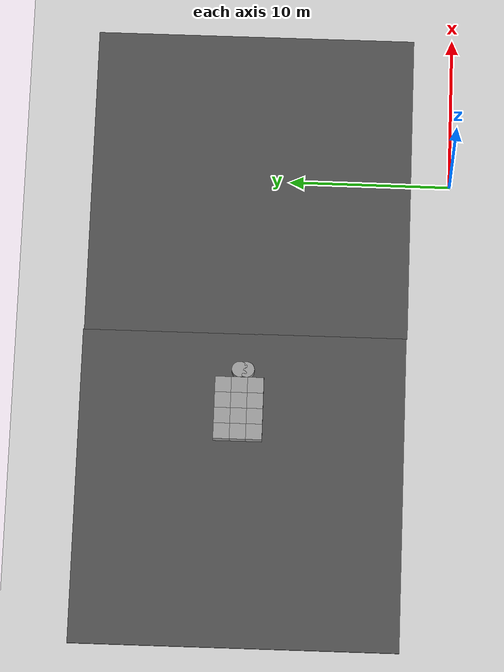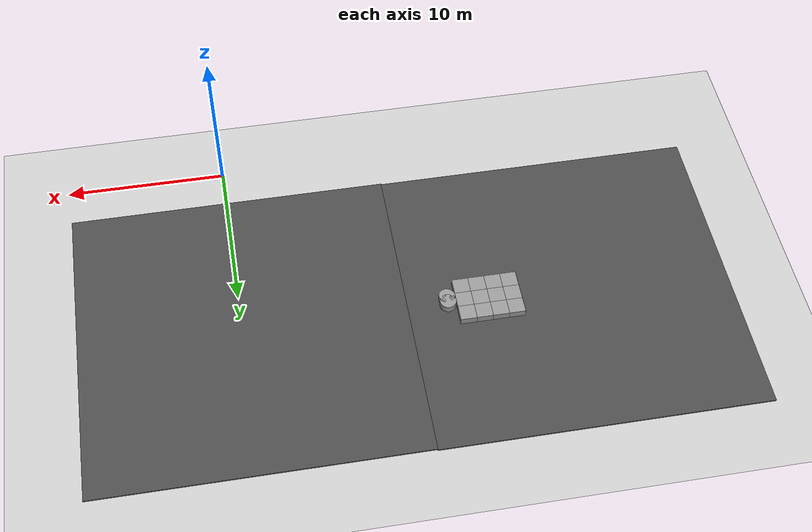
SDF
<sdf version="1.6">
 <world name="default">
  <model name="ground_plane">
   <static>1</static>
   <link name="link">
    <collision name="collision">
     <geometry><plane><normal>0 0 1</normal><size>100 100</size></plane></geometry>
     <surface><friction><ode><mu>100</mu><mu2>50</mu2></ode></friction></surface>
    </collision>
    <visual name="visual">
     <cast_shadows>0</cast_shadows>
     <geometry><plane><normal>0 0 1</normal><size>100 100</size></plane></geometry>
     <material>
      <script><uri>file://media/materials/scripts/gazebo.material</uri><name>Gazebo/Grey</name></script>
     </material>
    </visual>
   </link>
  </model>
  <model name="asphalt_plane">
   <static>1</static>
   <link name="link">
    <collision name="collision"><geometry><box><size>20 20 0.1</size></box></geometry></collision>
    <visual name="visual">
     <cast_shadows>0</cast_shadows>
     <geometry><box><size>20 20 0.1</size></box></geometry>
     <material>
      <script>
       <uri>model://asphalt_plane/materials/scripts</uri>
       <uri>model://asphalt_plane/materials/textures</uri>
       <name>vrc/asphalt</name>
      </script>
     </material>
    </visual>
   </link>
   <pose>-0.132526 12.4193 0 0 -0 0</pose>
  </model>
  <model name="asphalt_plane_0">
   <static>1</static>
   <link name="link">
    <collision name="collision"><geometry><box><size>20 20 0.1</size></box></geometry></collision>
    <visual name="visual">
     <cast_shadows>0</cast_shadows>
     <geometry><box><size>20 20 0.1</size></box></geometry>
     <material>
      <script>
       <uri>model://asphalt_plane/materials/scripts</uri>
       <uri>model://asphalt_plane/materials/textures</uri>
       <name>vrc/asphalt</name>
      </script>
     </material>
    </visual>
   </link>
   <pose>-20.1156 12.4778 0 0 -0 0</pose>
  </model>
  <model name="car_3">
   <link name="link_0">
    <pose>-0.5 -0.883748 0 0 -0 0</pose>
    <inertial>
     <mass>1</mass>
     <inertia>
      <ixx>0.166667</ixx>
      <ixy>0</ixy>
      <ixz>0</ixz>
      <iyy>0.166667</iyy>
      <iyz>0</iyz>
      <izz>0.166667</izz>
     </inertia>
    </inertial>
    <visual name="visual">
     <geometry><box><size>1 1 1</size></box></geometry>
     <material>
      <lighting>1</lighting>
      <script><uri>file://media/materials/scripts/gazebo.material</uri><name>Gazebo/Grey</name></script>
      <ambient>0.3 0.3 0.3 1</ambient>
      <diffuse>0.7 0.7 0.7 1</diffuse>
      <specular>0.01 0.01 0.01 1</specular>
      <emissive>0 0 0 1</emissive>
     </material>
    </visual>
    <collision name="collision">
     <geometry><box><size>1 1 1</size></box></geometry>
     <surface>
      <friction>
       <ode><mu>1</mu><mu2>1</mu2><fdir1>0 0 0</fdir1><slip1>0</slip1><slip2>0</slip2></ode>
       <torsional>
        <coefficient>1</coefficient>
        <patch_radius>0</patch_radius>
        <surface_radius>0</surface_radius>
        <use_patch_radius>1</use_patch_radius>
        <ode><slip>0</slip></ode>
       </torsional>
      </friction>
      <bounce><restitution_coefficient>0</restitution_coefficient><threshold>1e+06</threshold></bounce>
      <contact>
       <collide_without_contact>0</collide_without_contact>
       <collide_without_contact_bitmask>1</collide_without_contact_bitmask>
       <collide_bitmask>1</collide_bitmask>
       <ode>
        <soft_cfm>0</soft_cfm>
        <soft_erp>0.2</soft_erp>
        <kp>1e+13</kp>
        <kd>1</kd>
        <max_vel>0.01</max_vel>
        <min_depth>0</min_depth>
       </ode>
       <bullet>
        <split_impulse>1</split_impulse>
        <split_impulse_penetration_threshold>-0.01</split_impulse_penetration_threshold>
        <soft_cfm>0</soft_cfm>
        <soft_erp>0.2</soft_erp>
        <kp>1e+13</kp>
        <kd>1</kd>
       </bullet>
      </contact>
     </surface>
    </collision>
   </link>
   <link name="link_1">
    <pose>0.5 -0.883748 0 0 -0 0</pose>
    <inertial>
     <mass>1</mass>
     <inertia>
      <ixx>0.166667</ixx>
      <ixy>0</ixy>
      <ixz>0</ixz>
      <iyy>0.166667</iyy>
      <iyz>0</iyz>
      <izz>0.166667</izz>
     </inertia>
    </inertial>
    <visual name="visual">
     <geometry><box><size>1 1 1</size></box></geometry>
     <material>
      <lighting>1</lighting>
      <script><uri>file://media/materials/scripts/gazebo.material</uri><name>Gazebo/Grey</name></script>
      <ambient>0.3 0.3 0.3 1</ambient>
      <diffuse>0.7 0.7 0.7 1</diffuse>
      <specular>0.01 0.01 0.01 1</specular>
      <emissive>0 0 0 1</emissive>
     </material>
    </visual>
    <collision name="collision">
     <geometry><box><size>1 1 1</size></box></geometry>
     <surface>
      <friction>
       <ode><mu>1</mu><mu2>1</mu2><fdir1>0 0 0</fdir1><slip1>0</slip1><slip2>0</slip2></ode>
       <torsional>
        <coefficient>1</coefficient>
        <patch_radius>0</patch_radius>
        <surface_radius>0</surface_radius>
        <use_patch_radius>1</use_patch_radius>
        <ode><slip>0</slip></ode>
       </torsional>
      </friction>
      <bounce><restitution_coefficient>0</restitution_coefficient><threshold>1e+06</threshold></bounce>
      <contact>
       <collide_without_contact>0</collide_without_contact>
       <collide_without_contact_bitmask>1</collide_without_contact_bitmask>
       <collide_bitmask>1</collide_bitmask>
       <ode>
        <soft_cfm>0</soft_cfm>
        <soft_erp>0.2</soft_erp>
        <kp>1e+13</kp>
        <kd>1</kd>
        <max_vel>0.01</max_vel>
        <min_depth>0</min_depth>
       </ode>
       <bullet>
        <split_impulse>1</split_impulse>
        <split_impulse_penetration_threshold>-0.01</split_impulse_penetration_threshold>
        <soft_cfm>0</soft_cfm>
        <soft_erp>0.2</soft_erp>
        <kp>1e+13</kp>
        <kd>1</kd>
       </bullet>
      </contact>
     </surface>
    </collision>
   </link>
   <link name="link_12">
    <pose>-1.5 0.11625 0 0 -0 0</pose>
    <inertial>
     <mass>1</mass>
     <inertia>
      <ixx>0.166667</ixx>
      <ixy>0</ixy>
      <ixz>0</ixz>
      <iyy>0.166667</iyy>
      <iyz>0</iyz>
      <izz>0.166667</izz>
     </inertia>
    </inertial>
    <visual name="visual">
     <geometry><box><size>1 1 1</size></box></geometry>
     <material>
      <lighting>1</lighting>
      <script><uri>file://media/materials/scripts/gazebo.material</uri><name>Gazebo/Grey</name></script>
      <ambient>0.3 0.3 0.3 1</ambient>
      <diffuse>0.7 0.7 0.7 1</diffuse>
      <specular>0.01 0.01 0.01 1</specular>
      <emissive>0 0 0 1</emissive>
     </material>
    </visual>
    <collision name="collision">
     <geometry><box><size>1 1 1</size></box></geometry>
     <surface>
      <friction>
       <ode><mu>1</mu><mu2>1</mu2><fdir1>0 0 0</fdir1><slip1>0</slip1><slip2>0</slip2></ode>
       <torsional>
        <coefficient>1</coefficient>
        <patch_radius>0</patch_radius>
        <surface_radius>0</surface_radius>
        <use_patch_radius>1</use_patch_radius>
        <ode><slip>0</slip></ode>
       </torsional>
      </friction>
      <bounce><restitution_coefficient>0</restitution_coefficient><threshold>1e+06</threshold></bounce>
      <contact>
       <collide_without_contact>0</collide_without_contact>
       <collide_without_contact_bitmask>1</collide_without_contact_bitmask>
       <collide_bitmask>1</collide_bitmask>
       <ode>
        <soft_cfm>0</soft_cfm>
        <soft_erp>0.2</soft_erp>
        <kp>1e+13</kp>
        <kd>1</kd>
        <max_vel>0.01</max_vel>
        <min_depth>0</min_depth>
       </ode>
       <bullet>
        <split_impulse>1</split_impulse>
        <split_impulse_penetration_threshold>-0.01</split_impulse_penetration_threshold>
        <soft_cfm>0</soft_cfm>
        <soft_erp>0.2</soft_erp>
        <kp>1e+13</kp>
        <kd>1</kd>
       </bullet>
      </contact>
     </surface>
    </collision>
   </link>
   <link name="link_13">
    <pose>1.5 1.11625 0 0 -0 0</pose>
    <inertial>
     <mass>1</mass>
     <inertia>
      <ixx>0.166667</ixx>
      <ixy>0</ixy>
      <ixz>0</ixz>
      <iyy>0.166667</iyy>
      <iyz>0</iyz>
      <izz>0.166667</izz>
     </inertia>
    </inertial>
    <visual name="visual">
     <geometry><box><size>1 1 1</size></box></geometry>
     <material>
      <lighting>1</lighting>
      <script><uri>file://media/materials/scripts/gazebo.material</uri><name>Gazebo/Grey</name></script>
      <ambient>0.3 0.3 0.3 1</ambient>
      <diffuse>0.7 0.7 0.7 1</diffuse>
      <specular>0.01 0.01 0.01 1</specular>
      <emissive>0 0 0 1</emissive>
     </material>
    </visual>
    <collision name="collision">
     <geometry><box><size>1 1 1</size></box></geometry>
     <surface>
      <friction>
       <ode><mu>1</mu><mu2>1</mu2><fdir1>0 0 0</fdir1><slip1>0</slip1><slip2>0</slip2></ode>
       <torsional>
        <coefficient>1</coefficient>
        <patch_radius>0</patch_radius>
        <surface_radius>0</surface_radius>
        <use_patch_radius>1</use_patch_radius>
        <ode><slip>0</slip></ode>
       </torsional>
      </friction>
      <bounce><restitution_coefficient>0</restitution_coefficient><threshold>1e+06</threshold></bounce>
      <contact>
       <collide_without_contact>0</collide_without_contact>
       <collide_without_contact_bitmask>1</collide_without_contact_bitmask>
       <collide_bitmask>1</collide_bitmask>
       <ode>
        <soft_cfm>0</soft_cfm>
        <soft_erp>0.2</soft_erp>
        <kp>1e+13</kp>
        <kd>1</kd>
        <max_vel>0.01</max_vel>
        <min_depth>0</min_depth>
       </ode>
       <bullet>
        <split_impulse>1</split_impulse>
        <split_impulse_penetration_threshold>-0.01</split_impulse_penetration_threshold>
        <soft_cfm>0</soft_cfm>
        <soft_erp>0.2</soft_erp>
        <kp>1e+13</kp>
        <kd>1</kd>
       </bullet>
      </contact>
     </surface>
    </collision>
   </link>
   <link name="link_14">
    <pose>0.5 1.11625 0 0 -0 0</pose>
    <inertial>
     <mass>1</mass>
     <inertia>
      <ixx>0.166667</ixx>
      <ixy>0</ixy>
      <ixz>0</ixz>
      <iyy>0.166667</iyy>
      <iyz>0</iyz>
      <izz>0.166667</izz>
     </inertia>
    </inertial>
    <visual name="visual">
     <geometry><box><size>1 1 1</size></box></geometry>
     <material>
      <lighting>1</lighting>
      <script><uri>file://media/materials/scripts/gazebo.material</uri><name>Gazebo/Grey</name></script>
      <ambient>0.3 0.3 0.3 1</ambient>
      <diffuse>0.7 0.7 0.7 1</diffuse>
      <specular>0.01 0.01 0.01 1</specular>
      <emissive>0 0 0 1</emissive>
     </material>
    </visual>
    <collision name="collision">
     <geometry><box><size>1 1 1</size></box></geometry>
     <surface>
      <friction>
       <ode><mu>1</mu><mu2>1</mu2><fdir1>0 0 0</fdir1><slip1>0</slip1><slip2>0</slip2></ode>
       <torsional>
        <coefficient>1</coefficient>
        <patch_radius>0</patch_radius>
        <surface_radius>0</surface_radius>
        <use_patch_radius>1</use_patch_radius>
        <ode><slip>0</slip></ode>
       </torsional>
      </friction>
      <bounce><restitution_coefficient>0</restitution_coefficient><threshold>1e+06</threshold></bounce>
      <contact>
       <collide_without_contact>0</collide_without_contact>
       <collide_without_contact_bitmask>1</collide_without_contact_bitmask>
       <collide_bitmask>1</collide_bitmask>
       <ode>
        <soft_cfm>0</soft_cfm>
        <soft_erp>0.2</soft_erp>
        <kp>1e+13</kp>
        <kd>1</kd>
        <max_vel>0.01</max_vel>
        <min_depth>0</min_depth>
       </ode>
       <bullet>
        <split_impulse>1</split_impulse>
        <split_impulse_penetration_threshold>-0.01</split_impulse_penetration_threshold>
        <soft_cfm>0</soft_cfm>
        <soft_erp>0.2</soft_erp>
        <kp>1e+13</kp>
        <kd>1</kd>
       </bullet>
      </contact>
     </surface>
    </collision>
   </link>
   <link name="link_15">
    <pose>-0.5 1.11625 0 0 -0 0</pose>
    <inertial>
     <mass>1</mass>
     <inertia>
      <ixx>0.166667</ixx>
      <ixy>0</ixy>
      <ixz>0</ixz>
      <iyy>0.166667</iyy>
      <iyz>0</iyz>
      <izz>0.166667</izz>
     </inertia>
    </inertial>
    <visual name="visual">
     <geometry><box><size>1 1 1</size></box></geometry>
     <material>
      <lighting>1</lighting>
      <script><uri>file://media/materials/scripts/gazebo.material</uri><name>Gazebo/Grey</name></script>
      <ambient>0.3 0.3 0.3 1</ambient>
      <diffuse>0.7 0.7 0.7 1</diffuse>
      <specular>0.01 0.01 0.01 1</specular>
      <emissive>0 0 0 1</emissive>
     </material>
    </visual>
    <collision name="collision">
     <geometry><box><size>1 1 1</size></box></geometry>
     <surface>
      <friction>
       <ode><mu>1</mu><mu2>1</mu2><fdir1>0 0 0</fdir1><slip1>0</slip1><slip2>0</slip2></ode>
       <torsional>
        <coefficient>1</coefficient>
        <patch_radius>0</patch_radius>
        <surface_radius>0</surface_radius>
        <use_patch_radius>1</use_patch_radius>
        <ode><slip>0</slip></ode>
       </torsional>
      </friction>
      <bounce><restitution_coefficient>0</restitution_coefficient><threshold>1e+06</threshold></bounce>
      <contact>
       <collide_without_contact>0</collide_without_contact>
       <collide_without_contact_bitmask>1</collide_without_contact_bitmask>
       <collide_bitmask>1</collide_bitmask>
       <ode>
        <soft_cfm>0</soft_cfm>
        <soft_erp>0.2</soft_erp>
        <kp>1e+13</kp>
        <kd>1</kd>
        <max_vel>0.01</max_vel>
        <min_depth>0</min_depth>
       </ode>
       <bullet>
        <split_impulse>1</split_impulse>
        <split_impulse_penetration_threshold>-0.01</split_impulse_penetration_threshold>
        <soft_cfm>0</soft_cfm>
        <soft_erp>0.2</soft_erp>
        <kp>1e+13</kp>
        <kd>1</kd>
       </bullet>
      </contact>
     </surface>
    </collision>
   </link>
   <link name="link_16">
    <pose>-1.5 1.11625 0 0 -0 0</pose>
    <inertial>
     <mass>1</mass>
     <inertia>
      <ixx>0.166667</ixx>
      <ixy>0</ixy>
      <ixz>0</ixz>
      <iyy>0.166667</iyy>
      <iyz>0</iyz>
      <izz>0.166667</izz>
     </inertia>
    </inertial>
    <visual name="visual">
     <geometry><box><size>1 1 1</size></box></geometry>
     <material>
      <lighting>1</lighting>
      <script><uri>file://media/materials/scripts/gazebo.material</uri><name>Gazebo/Grey</name></script>
      <ambient>0.3 0.3 0.3 1</ambient>
      <diffuse>0.7 0.7 0.7 1</diffuse>
      <specular>0.01 0.01 0.01 1</specular>
      <emissive>0 0 0 1</emissive>
     </material>
    </visual>
    <collision name="collision">
     <geometry><box><size>1 1 1</size></box></geometry>
     <surface>
      <friction>
       <ode><mu>1</mu><mu2>1</mu2><fdir1>0 0 0</fdir1><slip1>0</slip1><slip2>0</slip2></ode>
       <torsional>
        <coefficient>1</coefficient>
        <patch_radius>0</patch_radius>
        <surface_radius>0</surface_radius>
        <use_patch_radius>1</use_patch_radius>
        <ode><slip>0</slip></ode>
       </torsional>
      </friction>
      <bounce><restitution_coefficient>0</restitution_coefficient><threshold>1e+06</threshold></bounce>
      <contact>
       <collide_without_contact>0</collide_without_contact>
       <collide_without_contact_bitmask>1</collide_without_contact_bitmask>
       <collide_bitmask>1</collide_bitmask>
       <ode>
        <soft_cfm>0</soft_cfm>
        <soft_erp>0.2</soft_erp>
        <kp>1e+13</kp>
        <kd>1</kd>
        <max_vel>0.01</max_vel>
        <min_depth>0</min_depth>
       </ode>
       <bullet>
        <split_impulse>1</split_impulse>
        <split_impulse_penetration_threshold>-0.01</split_impulse_penetration_threshold>
        <soft_cfm>0</soft_cfm>
        <soft_erp>0.2</soft_erp>
        <kp>1e+13</kp>
        <kd>1</kd>
       </bullet>
      </contact>
     </surface>
    </collision>
   </link>
   <link name="link_19">
    <pose>2.5 -0.287812 0 0 -0 0</pose>
    <inertial>
     <mass>1</mass>
     <inertia><ixx>0.145833</ixx><ixy>0</ixy><ixz>0</ixz><iyy>0.145833</iyy><iyz>0</iyz><izz>0.125</izz></inertia>
    </inertial>
    <visual name="visual">
     <geometry><cylinder><radius>0.5</radius><length>1</length></cylinder></geometry>
     <material>
      <lighting>1</lighting>
      <script><uri>file://media/materials/scripts/gazebo.material</uri><name>Gazebo/Grey</name></script>
      <ambient>0.3 0.3 0.3 1</ambient>
      <diffuse>0.7 0.7 0.7 1</diffuse>
      <specular>0.01 0.01 0.01 1</specular>
      <emissive>0 0 0 1</emissive>
     </material>
    </visual>
    <collision name="collision">
     <geometry><cylinder><radius>0.5</radius><length>1</length></cylinder></geometry>
     <surface>
      <friction>
       <ode><mu>1</mu><mu2>1</mu2><fdir1>0 0 0</fdir1><slip1>0</slip1><slip2>0</slip2></ode>
       <torsional>
        <coefficient>1</coefficient>
        <patch_radius>0</patch_radius>
        <surface_radius>0</surface_radius>
        <use_patch_radius>1</use_patch_radius>
        <ode><slip>0</slip></ode>
       </torsional>
      </friction>
      <bounce><restitution_coefficient>0</restitution_coefficient><threshold>1e+06</threshold></bounce>
      <contact>
       <collide_without_contact>0</collide_without_contact>
       <collide_without_contact_bitmask>1</collide_without_contact_bitmask>
       <collide_bitmask>1</collide_bitmask>
       <ode>
        <soft_cfm>0</soft_cfm>
        <soft_erp>0.2</soft_erp>
        <kp>1e+13</kp>
        <kd>1</kd>
        <max_vel>0.01</max_vel>
        <min_depth>0</min_depth>
       </ode>
       <bullet>
        <split_impulse>1</split_impulse>
        <split_impulse_penetration_threshold>-0.01</split_impulse_penetration_threshold>
        <soft_cfm>0</soft_cfm>
        <soft_erp>0.2</soft_erp>
        <kp>1e+13</kp>
        <kd>1</kd>
       </bullet>
      </contact>
     </surface>
    </collision>
   </link>
   <link name="link_2">
    <pose>1.5 -0.883748 0 0 -0 0</pose>
    <inertial>
     <mass>1</mass>
     <inertia>
      <ixx>0.166667</ixx>
      <ixy>0</ixy>
      <ixz>0</ixz>
      <iyy>0.166667</iyy>
      <iyz>0</iyz>
      <izz>0.166667</izz>
     </inertia>
    </inertial>
    <visual name="visual">
     <geometry><box><size>1 1 1</size></box></geometry>
     <material>
      <lighting>1</lighting>
      <script><uri>file://media/materials/scripts/gazebo.material</uri><name>Gazebo/Grey</name></script>
      <ambient>0.3 0.3 0.3 1</ambient>
      <diffuse>0.7 0.7 0.7 1</diffuse>
      <specular>0.01 0.01 0.01 1</specular>
      <emissive>0 0 0 1</emissive>
     </material>
    </visual>
    <collision name="collision">
     <geometry><box><size>1 1 1</size></box></geometry>
     <surface>
      <friction>
       <ode><mu>1</mu><mu2>1</mu2><fdir1>0 0 0</fdir1><slip1>0</slip1><slip2>0</slip2></ode>
       <torsional>
        <coefficient>1</coefficient>
        <patch_radius>0</patch_radius>
        <surface_radius>0</surface_radius>
        <use_patch_radius>1</use_patch_radius>
        <ode><slip>0</slip></ode>
       </torsional>
      </friction>
      <bounce><restitution_coefficient>0</restitution_coefficient><threshold>1e+06</threshold></bounce>
      <contact>
       <collide_without_contact>0</collide_without_contact>
       <collide_without_contact_bitmask>1</collide_without_contact_bitmask>
       <collide_bitmask>1</collide_bitmask>
       <ode>
        <soft_cfm>0</soft_cfm>
        <soft_erp>0.2</soft_erp>
        <kp>1e+13</kp>
        <kd>1</kd>
        <max_vel>0.01</max_vel>
        <min_depth>0</min_depth>
       </ode>
       <bullet>
        <split_impulse>1</split_impulse>
        <split_impulse_penetration_threshold>-0.01</split_impulse_penetration_threshold>
        <soft_cfm>0</soft_cfm>
        <soft_erp>0.2</soft_erp>
        <kp>1e+13</kp>
        <kd>1</kd>
       </bullet>
      </contact>
     </surface>
    </collision>
   </link>
   <link name="link_20">
    <pose>2.5 0.11625 0 0 -0 0</pose>
    <inertial>
     <mass>1</mass>
     <inertia><ixx>0.145833</ixx><ixy>0</ixy><ixz>0</ixz><iyy>0.145833</iyy><iyz>0</iyz><izz>0.125</izz></inertia>
    </inertial>
    <visual name="visual">
     <geometry><cylinder><radius>0.5</radius><length>1</length></cylinder></geometry>
     <material>
      <lighting>1</lighting>
      <script><uri>file://media/materials/scripts/gazebo.material</uri><name>Gazebo/Grey</name></script>
      <ambient>0.3 0.3 0.3 1</ambient>
      <diffuse>0.7 0.7 0.7 1</diffuse>
      <specular>0.01 0.01 0.01 1</specular>
      <emissive>0 0 0 1</emissive>
     </material>
    </visual>
    <collision name="collision">
     <geometry><cylinder><radius>0.5</radius><length>1</length></cylinder></geometry>
     <surface>
      <friction>
       <ode><mu>1</mu><mu2>1</mu2><fdir1>0 0 0</fdir1><slip1>0</slip1><slip2>0</slip2></ode>
       <torsional>
        <coefficient>1</coefficient>
        <patch_radius>0</patch_radius>
        <surface_radius>0</surface_radius>
        <use_patch_radius>1</use_patch_radius>
        <ode><slip>0</slip></ode>
       </torsional>
      </friction>
      <bounce><restitution_coefficient>0</restitution_coefficient><threshold>1e+06</threshold></bounce>
      <contact>
       <collide_without_contact>0</collide_without_contact>
       <collide_without_contact_bitmask>1</collide_without_contact_bitmask>
       <collide_bitmask>1</collide_bitmask>
       <ode>
        <soft_cfm>0</soft_cfm>
        <soft_erp>0.2</soft_erp>
        <kp>1e+13</kp>
        <kd>1</kd>
        <max_vel>0.01</max_vel>
        <min_depth>0</min_depth>
       </ode>
       <bullet>
        <split_impulse>1</split_impulse>
        <split_impulse_penetration_threshold>-0.01</split_impulse_penetration_threshold>
        <soft_cfm>0</soft_cfm>
        <soft_erp>0.2</soft_erp>
        <kp>1e+13</kp>
        <kd>1</kd>
       </bullet>
      </contact>
     </surface>
    </collision>
   </link>
   <link name="link_3">
    <pose>1.5 0.116252 0 0 -0 0</pose>
    <inertial>
     <mass>1</mass>
     <inertia>
      <ixx>0.166667</ixx>
      <ixy>0</ixy>
      <ixz>0</ixz>
      <iyy>0.166667</iyy>
      <iyz>0</iyz>
      <izz>0.166667</izz>
     </inertia>
    </inertial>
    <visual name="visual">
     <geometry><box><size>1 1 1</size></box></geometry>
     <material>
      <lighting>1</lighting>
      <script><uri>file://media/materials/scripts/gazebo.material</uri><name>Gazebo/Grey</name></script>
      <ambient>0.3 0.3 0.3 1</ambient>
      <diffuse>0.7 0.7 0.7 1</diffuse>
      <specular>0.01 0.01 0.01 1</specular>
      <emissive>0 0 0 1</emissive>
     </material>
    </visual>
    <collision name="collision">
     <geometry><box><size>1 1 1</size></box></geometry>
     <surface>
      <friction>
       <ode><mu>1</mu><mu2>1</mu2><fdir1>0 0 0</fdir1><slip1>0</slip1><slip2>0</slip2></ode>
       <torsional>
        <coefficient>1</coefficient>
        <patch_radius>0</patch_radius>
        <surface_radius>0</surface_radius>
        <use_patch_radius>1</use_patch_radius>
        <ode><slip>0</slip></ode>
       </torsional>
      </friction>
      <bounce><restitution_coefficient>0</restitution_coefficient><threshold>1e+06</threshold></bounce>
      <contact>
       <collide_without_contact>0</collide_without_contact>
       <collide_without_contact_bitmask>1</collide_without_contact_bitmask>
       <collide_bitmask>1</collide_bitmask>
       <ode>
        <soft_cfm>0</soft_cfm>
        <soft_erp>0.2</soft_erp>
        <kp>1e+13</kp>
        <kd>1</kd>
        <max_vel>0.01</max_vel>
        <min_depth>0</min_depth>
       </ode>
       <bullet>
        <split_impulse>1</split_impulse>
        <split_impulse_penetration_threshold>-0.01</split_impulse_penetration_threshold>
        <soft_cfm>0</soft_cfm>
        <soft_erp>0.2</soft_erp>
        <kp>1e+13</kp>
        <kd>1</kd>
       </bullet>
      </contact>
     </surface>
    </collision>
   </link>
   <link name="link_4">
    <pose>0.5 0.116252 0 0 -0 0</pose>
    <inertial>
     <mass>1</mass>
     <inertia>
      <ixx>0.166667</ixx>
      <ixy>0</ixy>
      <ixz>0</ixz>
      <iyy>0.166667</iyy>
      <iyz>0</iyz>
      <izz>0.166667</izz>
     </inertia>
    </inertial>
    <visual name="visual">
     <geometry><box><size>1 1 1</size></box></geometry>
     <material>
      <lighting>1</lighting>
      <script><uri>file://media/materials/scripts/gazebo.material</uri><name>Gazebo/Grey</name></script>
      <ambient>0.3 0.3 0.3 1</ambient>
      <diffuse>0.7 0.7 0.7 1</diffuse>
      <specular>0.01 0.01 0.01 1</specular>
      <emissive>0 0 0 1</emissive>
     </material>
    </visual>
    <collision name="collision">
     <geometry><box><size>1 1 1</size></box></geometry>
     <surface>
      <friction>
       <ode><mu>1</mu><mu2>1</mu2><fdir1>0 0 0</fdir1><slip1>0</slip1><slip2>0</slip2></ode>
       <torsional>
        <coefficient>1</coefficient>
        <patch_radius>0</patch_radius>
        <surface_radius>0</surface_radius>
        <use_patch_radius>1</use_patch_radius>
        <ode><slip>0</slip></ode>
       </torsional>
      </friction>
      <bounce><restitution_coefficient>0</restitution_coefficient><threshold>1e+06</threshold></bounce>
      <contact>
       <collide_without_contact>0</collide_without_contact>
       <collide_without_contact_bitmask>1</collide_without_contact_bitmask>
       <collide_bitmask>1</collide_bitmask>
       <ode>
        <soft_cfm>0</soft_cfm>
        <soft_erp>0.2</soft_erp>
        <kp>1e+13</kp>
        <kd>1</kd>
        <max_vel>0.01</max_vel>
        <min_depth>0</min_depth>
       </ode>
       <bullet>
        <split_impulse>1</split_impulse>
        <split_impulse_penetration_threshold>-0.01</split_impulse_penetration_threshold>
        <soft_cfm>0</soft_cfm>
        <soft_erp>0.2</soft_erp>
        <kp>1e+13</kp>
        <kd>1</kd>
       </bullet>
      </contact>
     </surface>
    </collision>
   </link>
   <link name="link_5">
    <pose>-0.5 0.116252 0 0 -0 0</pose>
    <inertial>
     <mass>1</mass>
     <inertia>
      <ixx>0.166667</ixx>
      <ixy>0</ixy>
      <ixz>0</ixz>
      <iyy>0.166667</iyy>
      <iyz>0</iyz>
      <izz>0.166667</izz>
     </inertia>
    </inertial>
    <visual name="visual">
     <geometry><box><size>1 1 1</size></box></geometry>
     <material>
      <lighting>1</lighting>
      <script><uri>file://media/materials/scripts/gazebo.material</uri><name>Gazebo/Grey</name></script>
      <ambient>0.3 0.3 0.3 1</ambient>
      <diffuse>0.7 0.7 0.7 1</diffuse>
      <specular>0.01 0.01 0.01 1</specular>
      <emissive>0 0 0 1</emissive>
     </material>
    </visual>
    <collision name="collision">
     <geometry><box><size>1 1 1</size></box></geometry>
     <surface>
      <friction>
       <ode><mu>1</mu><mu2>1</mu2><fdir1>0 0 0</fdir1><slip1>0</slip1><slip2>0</slip2></ode>
       <torsional>
        <coefficient>1</coefficient>
        <patch_radius>0</patch_radius>
        <surface_radius>0</surface_radius>
        <use_patch_radius>1</use_patch_radius>
        <ode><slip>0</slip></ode>
       </torsional>
      </friction>
      <bounce><restitution_coefficient>0</restitution_coefficient><threshold>1e+06</threshold></bounce>
      <contact>
       <collide_without_contact>0</collide_without_contact>
       <collide_without_contact_bitmask>1</collide_without_contact_bitmask>
       <collide_bitmask>1</collide_bitmask>
       <ode>
        <soft_cfm>0</soft_cfm>
        <soft_erp>0.2</soft_erp>
        <kp>1e+13</kp>
        <kd>1</kd>
        <max_vel>0.01</max_vel>
        <min_depth>0</min_depth>
       </ode>
       <bullet>
        <split_impulse>1</split_impulse>
        <split_impulse_penetration_threshold>-0.01</split_impulse_penetration_threshold>
        <soft_cfm>0</soft_cfm>
        <soft_erp>0.2</soft_erp>
        <kp>1e+13</kp>
        <kd>1</kd>
       </bullet>
      </contact>
     </surface>
    </collision>
   </link>
   <link name="link_9">
    <pose>-1.5 -0.883748 0 0 -0 0</pose>
    <inertial>
     <mass>1</mass>
     <inertia>
      <ixx>0.166667</ixx>
      <ixy>0</ixy>
      <ixz>0</ixz>
      <iyy>0.166667</iyy>
      <iyz>0</iyz>
      <izz>0.166667</izz>
     </inertia>
    </inertial>
    <visual name="visual">
     <geometry><box><size>1 1 1</size></box></geometry>
     <material>
      <lighting>1</lighting>
      <script><uri>file://media/materials/scripts/gazebo.material</uri><name>Gazebo/Grey</name></script>
      <ambient>0.3 0.3 0.3 1</ambient>
      <diffuse>0.7 0.7 0.7 1</diffuse>
      <specular>0.01 0.01 0.01 1</specular>
      <emissive>0 0 0 1</emissive>
     </material>
    </visual>
    <collision name="collision">
     <geometry><box><size>1 1 1</size></box></geometry>
     <surface>
      <friction>
       <ode><mu>1</mu><mu2>1</mu2><fdir1>0 0 0</fdir1><slip1>0</slip1><slip2>0</slip2></ode>
       <torsional>
        <coefficient>1</coefficient>
        <patch_radius>0</patch_radius>
        <surface_radius>0</surface_radius>
        <use_patch_radius>1</use_patch_radius>
        <ode><slip>0</slip></ode>
       </torsional>
      </friction>
      <bounce><restitution_coefficient>0</restitution_coefficient><threshold>1e+06</threshold></bounce>
      <contact>
       <collide_without_contact>0</collide_without_contact>
       <collide_without_contact_bitmask>1</collide_without_contact_bitmask>
       <collide_bitmask>1</collide_bitmask>
       <ode>
        <soft_cfm>0</soft_cfm>
        <soft_erp>0.2</soft_erp>
        <kp>1e+13</kp>
        <kd>1</kd>
        <max_vel>0.01</max_vel>
        <min_depth>0</min_depth>
       </ode>
       <bullet>
        <split_impulse>1</split_impulse>
        <split_impulse_penetration_threshold>-0.01</split_impulse_penetration_threshold>
        <soft_cfm>0</soft_cfm>
        <soft_erp>0.2</soft_erp>
        <kp>1e+13</kp>
        <kd>1</kd>
       </bullet>
      </contact>
     </surface>
    </collision>
   </link>
   <static>1</static>
   <pose>-15.0805 12.5692 0 0 -0 0</pose>
  </model>
 </world>
</sdf>
